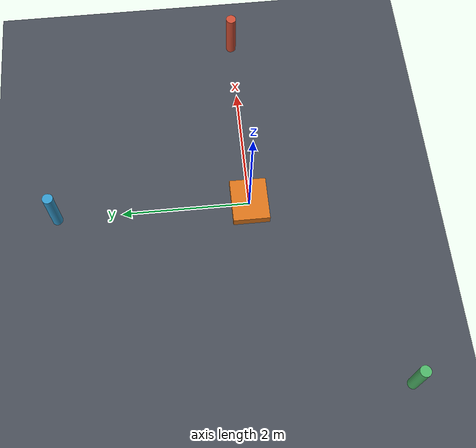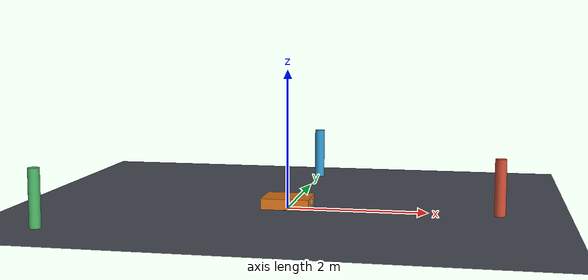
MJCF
<mujoco model="tracer">

  <compiler angle="radian" autolimits="true"/>
  <option timestep="0.002" integrator="implicitfast"/>

  <visual>
    <quality offsamples="0"/>
    <headlight diffuse="0.6 0.6 0.6" ambient="0.3 0.3 0.3"/>
    <global azimuth="130" elevation="-25"/>
  </visual>

  <default>
    <default class="wheel">
      <!-- friction = sliding, torsional, rolling -->
      <geom type="cylinder" size="0.08" rgba="0.15 0.15 0.15 1"
            friction="1.5 0.005 0.0001"/>
      <joint type="hinge" axis="0 1 0" damping="0.05" armature="0.01"/>
    </default>
    <default class="caster">
      <!-- Real swivelling casters chatter badly in MuJoCo. These are
           near-frictionless spheres: same support, no jitter, and the
           base still cannot strafe because the driven wheels grip. -->
      <geom type="sphere" size="0.035" rgba="0.55 0.55 0.55 1"
            friction="0.0005 0.0005 0.00001"/>
    </default>
  </default>

  <worldbody>
    <light pos="0 0 3" dir="0 0 -1" diffuse="0.8 0.8 0.8"/>

    <geom name="floor" type="plane" size="25 25 0.1"
          rgba="0.28 0.30 0.34 1" friction="1.0 0.005 0.0001"/>

    <!-- a couple of landmarks so motion is visible in the viewer -->
    <geom name="post_a" type="cylinder" pos="3 0 0.4" size="0.08 0.4" rgba="0.8 0.3 0.2 1"/>
    <geom name="post_b" type="cylinder" pos="0 3 0.4" size="0.08 0.4" rgba="0.2 0.6 0.8 1"/>
    <geom name="post_c" type="cylinder" pos="-3 -2 0.4" size="0.08 0.4" rgba="0.3 0.7 0.4 1"/>

    <!-- base sits at z = wheel radius so the wheels touch the floor -->
    <body name="base_link" pos="0 0 0.08">
      <freejoint name="base_free"/>
      <inertial pos="0 0 0.02" mass="30" diaginertia="0.9 1.2 1.6"/>

      <geom name="chassis" type="box" pos="0 0 0.0175"
            size="0.3425 0.285 0.0775" rgba="0.85 0.45 0.10 1"/>
      <!-- small nose marker so you can tell which way is forward -->
      <geom name="nose" type="box" pos="0.33 0 0.0175"
            size="0.02 0.06 0.03" rgba="0.95 0.95 0.95 1"/>

      <body name="left_wheel_link" pos="0 0.20 0">
        <joint name="left_wheel" class="wheel"/>
        <geom class="wheel" fromto="0 -0.025 0 0 0.025 0"/>
      </body>

      <body name="right_wheel_link" pos="0 -0.20 0">
        <joint name="right_wheel" class="wheel"/>
        <geom class="wheel" fromto="0 -0.025 0 0 0.025 0"/>
      </body>

      <geom name="caster_fl" class="caster" pos=" 0.26  0.20 -0.045"/>
      <geom name="caster_fr" class="caster" pos=" 0.26 -0.20 -0.045"/>
      <geom name="caster_rl" class="caster" pos="-0.26  0.20 -0.045"/>
      <geom name="caster_rr" class="caster" pos="-0.26 -0.20 -0.045"/>
    </body>
  </worldbody>

  <actuator>
    <velocity name="left_wheel_vel"  joint="left_wheel"  kv="25" ctrlrange="-40 40"/>
    <velocity name="right_wheel_vel" joint="right_wheel" kv="25" ctrlrange="-40 40"/>
  </actuator>
</mujoco>
